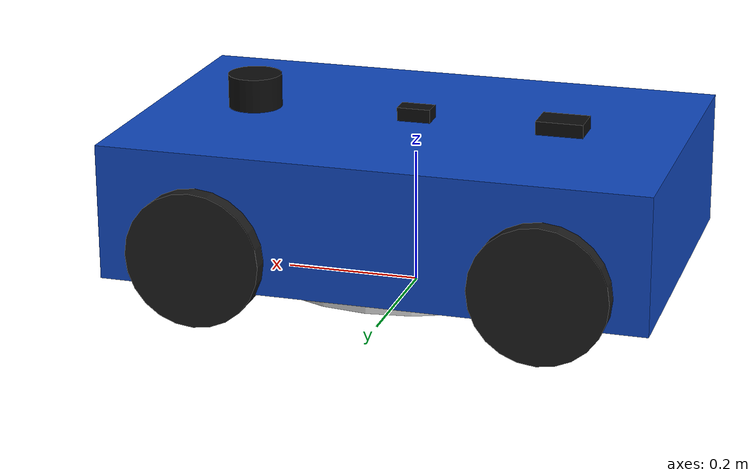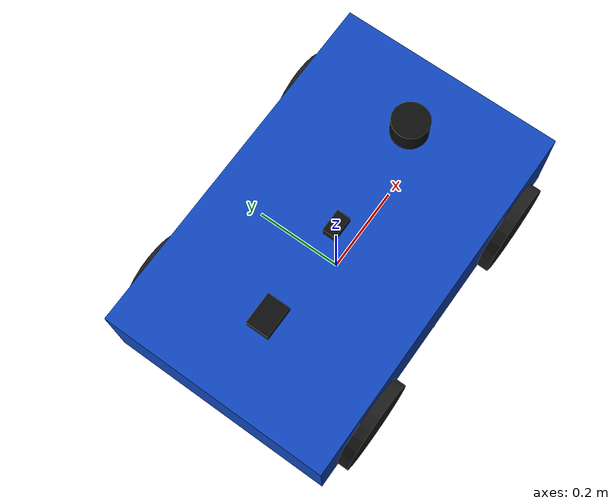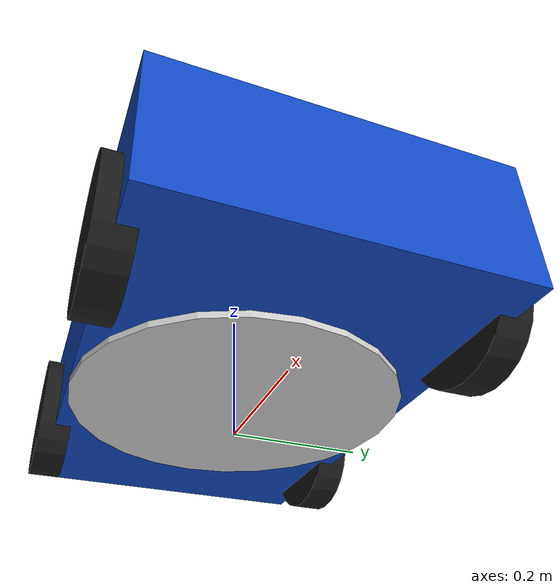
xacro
<?xml version="1.0"?>
<robot name="mower" xmlns:xacro="http://www.ros.org/wiki/xacro">
  <xacro:arg name="diff_wheel_accel" default="4.0"/>
  <xacro:arg name="diff_wheel_torque" default="260.0"/>
  <xacro:arg name="lidar_mount_z" default="0.125"/>
  <xacro:arg name="lidar_min_range" default="0.12"/>
  <xacro:arg name="camera_pitch" default="0.15"/>

  <!-- ================= BASE FOOTPRINT ================= -->
  <link name="base_footprint"/>

  <!-- ================= BASE LINK ================= -->
  <link name="base_link">
    <visual>
      <origin xyz="0 0 0" rpy="0 0 0"/>
      <geometry>
        <box size="0.8 0.5 0.2"/>
      </geometry>
      <material name="mower_blue">
        <color rgba="0.06 0.28 0.75 1"/>
      </material>
    </visual>
    <collision>
      <origin xyz="0 0 0" rpy="0 0 0"/>
      <geometry>
        <box size="0.8 0.5 0.2"/>
      </geometry>
    </collision>
    <inertial>
      <mass value="20"/>
      <origin xyz="0 0 0"/>
      <inertia ixx="1" iyy="1" izz="1"
               ixy="0" ixz="0" iyz="0"/>
    </inertial>
  </link>
  <gazebo reference="base_link">
    <selfCollide>false</selfCollide>
    <!-- Extra velocity decay reduces unrealistic coasting in simulation. -->
    <velocityDecay>
      <linear>0.25</linear>
      <angular>0.35</angular>
    </velocityDecay>
  </gazebo>
  <joint name="base_joint" type="fixed">
    <parent link="base_footprint"/>
    <child link="base_link"/>
    <!-- Keep base_footprint on ground; raise base_link to wheel-axle/body frame. -->
    <origin xyz="0 0 0.15"/>
  </joint>

  <!-- ================= LIDAR ================= -->
  <link name="lidar_link">
    <visual>
      <origin xyz="0 0 0" rpy="0 0 0"/>
      <geometry>
        <cylinder radius="0.04" length="0.05"/>
      </geometry>
      <material name="sensor_black">
        <color rgba="0.05 0.05 0.05 1"/>
      </material>
    </visual>
    <collision>
      <origin xyz="0 0 0" rpy="0 0 0"/>
      <geometry>
        <cylinder radius="0.04" length="0.05"/>
      </geometry>
    </collision>
    <inertial>
      <mass value="0.2"/>
      <origin xyz="0 0 0"/>
      <inertia ixx="1e-4" iyy="1e-4" izz="1e-4" ixy="0" ixz="0" iyz="0"/>
    </inertial>
  </link>

  <joint name="lidar_joint" type="fixed">
    <parent link="base_link"/>
    <child link="lidar_link"/>
    <!-- mount on top-front of chassis -->
    <origin xyz="0.25 0 $(arg lidar_mount_z)" rpy="0 0 0"/>
  </joint>

  <!-- ================= IMU ================= -->
  <link name="imu_link">
    <visual>
      <origin xyz="0 0 0" rpy="0 0 0"/>
      <geometry>
        <box size="0.05 0.03 0.02"/>
      </geometry>
      <material name="sensor_black">
        <color rgba="0.05 0.05 0.05 1"/>
      </material>
    </visual>
    <collision>
      <origin xyz="0 0 0" rpy="0 0 0"/>
      <geometry>
        <box size="0.05 0.03 0.02"/>
      </geometry>
    </collision>
    <inertial>
      <mass value="0.05"/>
      <origin xyz="0 0 0"/>
      <inertia ixx="1e-5" iyy="1e-5" izz="1e-5" ixy="0" ixz="0" iyz="0"/>
    </inertial>
  </link>

  <joint name="imu_joint" type="fixed">
    <parent link="base_link"/>
    <child link="imu_link"/>
    <!-- mount near center/top -->
    <origin xyz="0 0 0.11" rpy="0 0 0"/>
  </joint>

  <!-- ================= CAMERA ================= -->
  <link name="camera_link">
    <visual>
      <origin xyz="0 0 0" rpy="0 0 0"/>
      <geometry>
        <box size="0.06 0.03 0.03"/>
      </geometry>
      <material name="camera_black">
        <color rgba="0.05 0.05 0.05 1"/>
      </material>
    </visual>
    <collision>
      <origin xyz="0 0 0" rpy="0 0 0"/>
      <geometry>
        <box size="0.06 0.03 0.03"/>
      </geometry>
    </collision>
    <inertial>
      <mass value="0.1"/>
      <origin xyz="0 0 0"/>
      <inertia ixx="1e-4" iyy="1e-4" izz="1e-4" ixy="0" ixz="0" iyz="0"/>
    </inertial>
  </link>

  <joint name="camera_joint" type="fixed">
    <parent link="base_link"/>
    <child link="camera_link"/>
    <!-- underside-front mount with mild downward pitch for close grass visibility -->
    <origin xyz="0.30 0 -0.08" rpy="0 $(arg camera_pitch) 0"/>
  </joint>

  <link name="camera_optical_link"/>
  <joint name="camera_optical_joint" type="fixed">
    <parent link="camera_link"/>
    <child link="camera_optical_link"/>
    <!-- REP-103 optical frame: +Z forward, +X right, +Y down -->
    <origin xyz="0 0 0" rpy="-1.57079632679 0 -1.57079632679"/>
  </joint>

  <!-- ================= GPS MODULE ================= -->
  <link name="gps_link">
    <visual>
      <origin xyz="0 0 0" rpy="0 0 0"/>
      <geometry>
        <box size="0.07 0.05 0.02"/>
      </geometry>
      <material name="sensor_black">
        <color rgba="0.05 0.05 0.05 1"/>
      </material>
    </visual>
    <collision>
      <origin xyz="0 0 0" rpy="0 0 0"/>
      <geometry>
        <box size="0.07 0.05 0.02"/>
      </geometry>
    </collision>
    <inertial>
      <mass value="0.08"/>
      <origin xyz="0 0 0"/>
      <inertia ixx="1e-5" iyy="1e-5" izz="1e-5" ixy="0" ixz="0" iyz="0"/>
    </inertial>
  </link>

  <joint name="gps_joint" type="fixed">
    <parent link="base_link"/>
    <child link="gps_link"/>
    <origin xyz="-0.22 0 0.11" rpy="0 0 0"/>
  </joint>

  <!-- ================= WHEEL MACROS ================= -->
  <xacro:macro name="wheel_link" params="name mass">
    <link name="${name}">
      <visual>
        <origin xyz="0 0 0" rpy="1.5708 0 0"/>
        <geometry>
          <cylinder radius="0.1" length="0.05"/>
        </geometry>
        <material name="${name}_color">
          <color rgba="0.1 0.1 0.1 1"/>
        </material>
      </visual>

      <collision>
        <origin xyz="0 0 0" rpy="1.5708 0 0"/>
        <geometry>
          <cylinder radius="0.1" length="0.05"/>
        </geometry>
      </collision>

      <inertial>
        <origin xyz="0 0 0" rpy="0 0 0"/>
        <mass value="${mass}"/>
        <inertia ixx="0.002604" iyy="0.002604" izz="0.005000"
                 ixy="0" ixz="0" iyz="0"/>
      </inertial>
    </link>
  </xacro:macro>

  <xacro:macro name="idler_wheel" params="name x y axis_sign">
    <xacro:wheel_link name="${name}" mass="0.45"/>

    <gazebo reference="${name}">
      <selfCollide>false</selfCollide>
      <gravity>true</gravity>
      <!-- Front idlers should roll easily and not dominate yaw dynamics. -->
      <mu1>0.08</mu1>
      <mu2>0.01</mu2>
      <kp>60000.0</kp>
      <kd>1.5</kd>
      <minDepth>0.0007</minDepth>
      <slip1>1.20</slip1>
      <slip2>3.50</slip2>
    </gazebo>

    <joint name="${name}_joint" type="continuous">
      <parent link="base_link"/>
      <child link="${name}"/>
      <origin xyz="${x} ${y} -0.05"/>
      <axis xyz="0 ${axis_sign} 0"/>
      <!-- Idlers are passive -->
      <limit effort="5.0" velocity="30.0"/>
      <dynamics damping="0.02" friction="0.0"/>
    </joint>
  </xacro:macro>

  <xacro:macro name="drive_wheel" params="name x y axis_sign">
    <xacro:wheel_link name="${name}" mass="1.0"/>

    <gazebo reference="${name}">
      <selfCollide>false</selfCollide>
      <gravity>true</gravity>
      <mu1>1.10</mu1>
      <mu2>0.10</mu2>
      <kp>70000.0</kp>
      <kd>1.8</kd>
      <minDepth>0.0008</minDepth>
      <slip1>0.03</slip1>
      <slip2>0.65</slip2>
    </gazebo>

    <joint name="${name}_joint" type="continuous">
      <parent link="base_link"/>
      <child link="${name}"/>
      <origin xyz="${x} ${y} -0.05"/>
      <axis xyz="0 ${axis_sign} 0"/>
      <!-- Rear motorized wheels -->
      <limit effort="120.0" velocity="30.0"/>
      <!-- Rear wheel damping acts like motor braking in simulation. -->
      <dynamics damping="0.80" friction="0.0"/>
    </joint>

    <transmission name="${name}_trans">
       <type>transmission_interface/SimpleTransmission</type>
      <joint name="${name}_joint">
        <hardwareInterface>hardware_interface/VelocityJointInterface</hardwareInterface>
      </joint>
      <actuator name="${name}_motor">
        <mechanicalReduction>1</mechanicalReduction>
      </actuator>
    </transmission>
  </xacro:macro>

  <!-- ================= 4 WHEELS ================= -->
  <!-- Front are passive idlers, rear are driven -->
  <!-- Keep wheel-axis sign consistent so drive plugins map left/right commands predictably. -->
  <xacro:idler_wheel name="front_left_wheel"  x="0.25"  y="0.25"  axis_sign="1"/>
  <xacro:idler_wheel name="front_right_wheel" x="0.25"  y="-0.25" axis_sign="1"/>
  <xacro:drive_wheel name="rear_left_wheel"   x="-0.25" y="0.25"  axis_sign="1"/>
  <xacro:drive_wheel name="rear_right_wheel"  x="-0.25" y="-0.25" axis_sign="1"/>
  <!-- Wheel coloring in Gazebo -->
  <gazebo reference="front_left_wheel"><material>Gazebo/Black</material></gazebo>
  <gazebo reference="front_right_wheel"><material>Gazebo/Black</material></gazebo>
  <gazebo reference="rear_left_wheel"><material>Gazebo/Black</material></gazebo>
  <gazebo reference="rear_right_wheel"><material>Gazebo/Black</material></gazebo>
  <!-- ================= CUTTER ================= -->
  <link name="cutter">
    <visual>
      <origin xyz="0 0 0" rpy="0 0 0"/>
      <geometry>
        <cylinder radius="0.25" length="0.02"/>
      </geometry>
      <material name="silver">
        <color rgba="0.8 0.8 0.8 1"/>
      </material>
    </visual>
    <collision>
      <geometry>
        <cylinder radius="0.25" length="0.02"/>
      </geometry>
    </collision>
    <inertial>
      <mass value="2"/>
      <origin xyz="0 0 0"/>
      <inertia ixx="0.05" iyy="0.05" izz="0.05"
               ixy="0" ixz="0" iyz="0"/>
    </inertial>
  </link>

  <joint name="cutter_joint" type="continuous">
    <parent link="base_link"/>
    <child link="cutter"/>
    <origin xyz="0 0 -0.1"/>
    <axis xyz="0 0 1"/>
    <dynamics damping="0.2" friction="0.05"/>
  </joint>

  <transmission name="cutter_trans">
    <type>transmission_interface/SimpleTransmission</type>
    <joint name="cutter_joint">
      <hardwareInterface>hardware_interface/VelocityJointInterface</hardwareInterface>
    </joint>
    <actuator name="cutter_motor">
      <mechanicalReduction>1</mechanicalReduction>
    </actuator>
  </transmission>

  <!-- ================= GAZEBO CONTROL ================= -->
  <gazebo>
    <plugin name="gazebo_ros_control" filename="libgazebo_ros_control.so"/>
  </gazebo>
  <!-- Rear-wheel differential drive in Gazebo. Front wheels are passive idlers. -->
  <gazebo>
    <plugin name="sim_diff_drive" filename="libgazebo_ros_diff_drive.so">
      <alwaysOn>true</alwaysOn>
      <updateRate>80</updateRate>
      <robotNamespace></robotNamespace>
      <leftJoint>rear_left_wheel_joint</leftJoint>
      <rightJoint>rear_right_wheel_joint</rightJoint>
      <wheelSeparation>0.5</wheelSeparation>
      <wheelDiameter>0.2</wheelDiameter>
      <wheelAcceleration>$(arg diff_wheel_accel)</wheelAcceleration>
      <wheelTorque>$(arg diff_wheel_torque)</wheelTorque>
      <commandTopic>/cmd_vel</commandTopic>
      <odometryTopic>/odom</odometryTopic>
      <odometryFrame>odom</odometryFrame>
      <robotBaseFrame>base_footprint</robotBaseFrame>
      <publishWheelTF>false</publishWheelTF>
      <publishOdomTF>false</publishOdomTF>
      <publishWheelJointState>false</publishWheelJointState>
      <legacyMode>false</legacyMode>
      <covariance_x>0.0001</covariance_x>
      <covariance_y>0.0001</covariance_y>
      <covariance_yaw>0.01</covariance_yaw>
    </plugin>
  </gazebo>

  <!-- Gazebo Ray Sensor publishing /scan -->
  <gazebo reference="lidar_link">
    <sensor type="ray" name="lidar">
      <pose>0 0 0 0 0 0</pose>
      <update_rate>10</update_rate>
      <ray>
        <scan>
          <horizontal>
            <samples>720</samples>
            <resolution>1</resolution>
            <min_angle>-3.14159</min_angle>
            <max_angle>3.14159</max_angle>
          </horizontal>
        </scan>
        <range>
          <min>$(arg lidar_min_range)</min>
          <max>12.0</max>
          <resolution>0.01</resolution>
        </range>
        <noise>
          <type>gaussian</type>
          <mean>0.0</mean>
          <stddev>0.01</stddev>
        </noise>
      </ray>

      <plugin name="gazebo_ros_laser" filename="libgazebo_ros_laser.so">
        <topicName>/scan</topicName>
        <frameName>lidar_link</frameName>
      </plugin>
    </sensor>
  </gazebo>

  <!-- Gazebo IMU publishing /imu/data -->
  <gazebo reference="imu_link">
    <sensor name="imu_sensor" type="imu">
      <always_on>true</always_on>
      <update_rate>50</update_rate>
      <imu>
        <angular_velocity>
          <noise type="gaussian">
            <mean>0.0</mean>
            <stddev>0.002</stddev>
          </noise>
        </angular_velocity>
        <linear_acceleration>
          <noise type="gaussian">
            <mean>0.0</mean>
            <stddev>0.02</stddev>
          </noise>
        </linear_acceleration>
      </imu>

      <plugin name="gazebo_ros_imu" filename="libgazebo_ros_imu_sensor.so">
        <topicName>/imu/data</topicName>
        <bodyName>imu_link</bodyName>
        <frameName>imu_link</frameName>
        <updateRateHZ>50</updateRateHZ>
        <xyzOffset>0 0 0</xyzOffset>
        <rpyOffset>0 0 0</rpyOffset>
        <gaussianNoise>0.0</gaussianNoise>
      </plugin>
    </sensor>
  </gazebo>

  <!-- Gazebo RGB camera publishing /camera/image_raw and /camera/camera_info -->
  <gazebo reference="camera_link">
    <sensor type="camera" name="mower_camera">
      <!-- camera body is already mounted forward; keep sensor centered in link -->
      <pose>0 0 0 0 0 0</pose>
      <update_rate>15</update_rate>
      <camera>
        <horizontal_fov>1.047</horizontal_fov> <!-- ~60 degrees -->
        <image>
          <width>640</width>
          <height>480</height>
          <format>R8G8B8</format>
        </image>
        <clip>
          <near>0.05</near>
          <far>50</far>
        </clip>
      </camera>

      <plugin name="gazebo_ros_camera" filename="libgazebo_ros_camera.so">
        <cameraName>mower_camera</cameraName>
        <robotNamespace>/</robotNamespace>

        <!-- These set the ROS topics -->
        <imageTopicName>camera/image_raw</imageTopicName>
        <cameraInfoTopicName>camera/camera_info</cameraInfoTopicName>

        <!-- Frame id in ROS messages -->
        <frameName>camera_optical_link</frameName>

        <!-- Optional: make images uncompressed and reliable -->
        <hackBaseline>0.07</hackBaseline>
        <distortionK1>0.0</distortionK1>
        <distortionK2>0.0</distortionK2>
        <distortionK3>0.0</distortionK3>
        <distortionT1>0.0</distortionT1>
        <distortionT2>0.0</distortionT2>
      </plugin>
    </sensor>
  </gazebo>

</robot>
